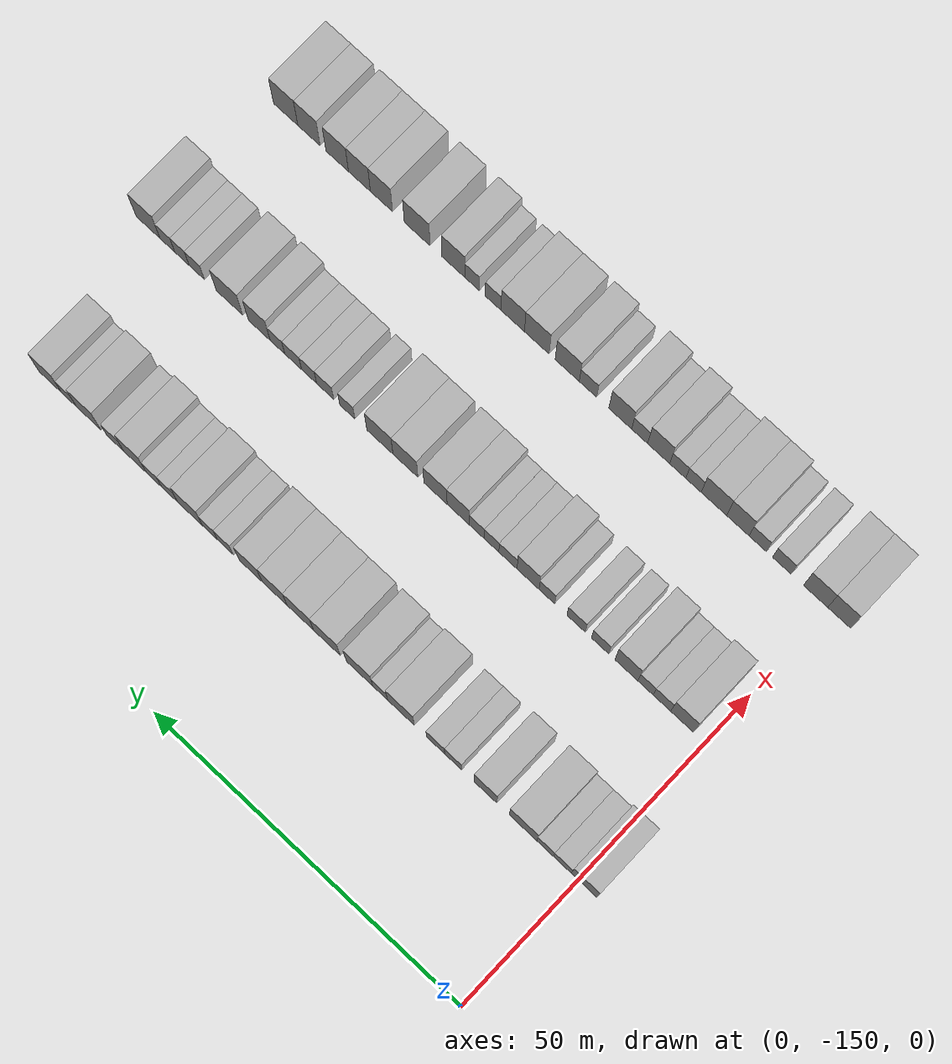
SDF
<sdf version="1.6">
 <world name="default">
  <model name="building_26">
   <static>1</static>
   <pose>25.0000 -150.8391 0 0.000000 0.000000 0.000000</pose>
   <link name="link">
    <pose>0 0 4.50 0 0 0</pose>
    <collision name="collision"><geometry><box><size>10.0000 4.0798 9.0000</size></box></geometry></collision>
    <visual name="visual">
     <cast_shadows>0</cast_shadows>
     <geometry><box><size>10.0000 4.0798 9.0000</size></box></geometry>
     <material>
      <script>
       <uri>model://HANNAS_wall/materials/scripts</uri>
       <uri>model://HANNAS_wall/materials/textures</uri>
       <name>vrc/HANNAS_wall</name>
      </script>
     </material>
    </visual>
   </link>
  </model>
  <model name="building_27">
   <static>1</static>
   <pose>25.0000 -147.3620 0 0.000000 0.000000 0.000000</pose>
   <link name="link">
    <pose>0 0 3.00 0 0 0</pose>
    <collision name="collision"><geometry><box><size>10.0000 2.8744 6.0000</size></box></geometry></collision>
    <visual name="visual">
     <cast_shadows>0</cast_shadows>
     <geometry><box><size>10.0000 2.8744 6.0000</size></box></geometry>
     <material>
      <script>
       <uri>model://HANNAS_wall/materials/scripts</uri>
       <uri>model://HANNAS_wall/materials/textures</uri>
       <name>vrc/HANNAS_wall</name>
      </script>
     </material>
    </visual>
   </link>
  </model>
  <model name="building_28">
   <static>1</static>
   <pose>25.0000 -144.6127 0 0.000000 0.000000 0.000000</pose>
   <link name="link">
    <pose>0 0 3.00 0 0 0</pose>
    <collision name="collision"><geometry><box><size>10.0000 2.6241 6.0000</size></box></geometry></collision>
    <visual name="visual">
     <cast_shadows>0</cast_shadows>
     <geometry><box><size>10.0000 2.6241 6.0000</size></box></geometry>
     <material>
      <script>
       <uri>model://HANNAS_wall/materials/scripts</uri>
       <uri>model://HANNAS_wall/materials/textures</uri>
       <name>vrc/HANNAS_wall</name>
      </script>
     </material>
    </visual>
   </link>
  </model>
  <model name="building_29">
   <static>1</static>
   <pose>25.0000 -141.0831 0 0.000000 0.000000 0.000000</pose>
   <link name="link">
    <pose>0 0 4.50 0 0 0</pose>
    <collision name="collision"><geometry><box><size>10.0000 4.4352 9.0000</size></box></geometry></collision>
    <visual name="visual">
     <cast_shadows>0</cast_shadows>
     <geometry><box><size>10.0000 4.4352 9.0000</size></box></geometry>
     <material>
      <script>
       <uri>model://HANNAS_wall/materials/scripts</uri>
       <uri>model://HANNAS_wall/materials/textures</uri>
       <name>vrc/HANNAS_wall</name>
      </script>
     </material>
    </visual>
   </link>
  </model>
  <model name="building_30">
   <static>1</static>
   <pose>25.0000 -135.0234 0 0.000000 0.000000 0.000000</pose>
   <link name="link">
    <pose>0 0 4.50 0 0 0</pose>
    <collision name="collision"><geometry><box><size>10.0000 3.6841 9.0000</size></box></geometry></collision>
    <visual name="visual">
     <cast_shadows>0</cast_shadows>
     <geometry><box><size>10.0000 3.6841 9.0000</size></box></geometry>
     <material>
      <script>
       <uri>model://HANNAS_wall/materials/scripts</uri>
       <uri>model://HANNAS_wall/materials/textures</uri>
       <name>vrc/HANNAS_wall</name>
      </script>
     </material>
    </visual>
   </link>
  </model>
  <model name="building_31">
   <static>1</static>
   <pose>25.0000 -129.8097 0 0.000000 0.000000 0.000000</pose>
   <link name="link">
    <pose>0 0 3.00 0 0 0</pose>
    <collision name="collision"><geometry><box><size>10.0000 2.7434 6.0000</size></box></geometry></collision>
    <visual name="visual">
     <cast_shadows>0</cast_shadows>
     <geometry><box><size>10.0000 2.7434 6.0000</size></box></geometry>
     <material>
      <script>
       <uri>model://HANNAS_wall/materials/scripts</uri>
       <uri>model://HANNAS_wall/materials/textures</uri>
       <name>vrc/HANNAS_wall</name>
      </script>
     </material>
    </visual>
   </link>
  </model>
  <model name="building_32">
   <static>1</static>
   <pose>25.0000 -126.9727 0 0.000000 0.000000 0.000000</pose>
   <link name="link">
    <pose>0 0 3.00 0 0 0</pose>
    <collision name="collision"><geometry><box><size>10.0000 2.9306 6.0000</size></box></geometry></collision>
    <visual name="visual">
     <cast_shadows>0</cast_shadows>
     <geometry><box><size>10.0000 2.9306 6.0000</size></box></geometry>
     <material>
      <script>
       <uri>model://HANNAS_wall/materials/scripts</uri>
       <uri>model://HANNAS_wall/materials/textures</uri>
       <name>vrc/HANNAS_wall</name>
      </script>
     </material>
    </visual>
   </link>
  </model>
  <model name="building_33">
   <static>1</static>
   <pose>25.0000 -121.3154 0 0.000000 0.000000 0.000000</pose>
   <link name="link">
    <pose>0 0 4.50 0 0 0</pose>
    <collision name="collision"><geometry><box><size>10.0000 4.3840 9.0000</size></box></geometry></collision>
    <visual name="visual">
     <cast_shadows>0</cast_shadows>
     <geometry><box><size>10.0000 4.3840 9.0000</size></box></geometry>
     <material>
      <script>
       <uri>model://HANNAS_wall/materials/scripts</uri>
       <uri>model://HANNAS_wall/materials/textures</uri>
       <name>vrc/HANNAS_wall</name>
      </script>
     </material>
    </visual>
   </link>
  </model>
  <model name="building_34">
   <static>1</static>
   <pose>25.0000 -117.9137 0 0.000000 0.000000 0.000000</pose>
   <link name="link">
    <pose>0 0 3.00 0 0 0</pose>
    <collision name="collision"><geometry><box><size>10.0000 2.4193 6.0000</size></box></geometry></collision>
    <visual name="visual">
     <cast_shadows>0</cast_shadows>
     <geometry><box><size>10.0000 2.4193 6.0000</size></box></geometry>
     <material>
      <script>
       <uri>model://HANNAS_wall/materials/scripts</uri>
       <uri>model://HANNAS_wall/materials/textures</uri>
       <name>vrc/HANNAS_wall</name>
      </script>
     </material>
    </visual>
   </link>
  </model>
  <model name="building_35">
   <static>1</static>
   <pose>25.0000 -114.5419 0 0.000000 0.000000 0.000000</pose>
   <link name="link">
    <pose>0 0 4.50 0 0 0</pose>
    <collision name="collision"><geometry><box><size>10.0000 4.3243 9.0000</size></box></geometry></collision>
    <visual name="visual">
     <cast_shadows>0</cast_shadows>
     <geometry><box><size>10.0000 4.3243 9.0000</size></box></geometry>
     <material>
      <script>
       <uri>model://HANNAS_wall/materials/scripts</uri>
       <uri>model://HANNAS_wall/materials/textures</uri>
       <name>vrc/HANNAS_wall</name>
      </script>
     </material>
    </visual>
   </link>
  </model>
  <model name="building_36">
   <static>1</static>
   <pose>25.0000 -109.1710 0 0.000000 0.000000 0.000000</pose>
   <link name="link">
    <pose>0 0 4.50 0 0 0</pose>
    <collision name="collision"><geometry><box><size>10.0000 4.4175 9.0000</size></box></geometry></collision>
    <visual name="visual">
     <cast_shadows>0</cast_shadows>
     <geometry><box><size>10.0000 4.4175 9.0000</size></box></geometry>
     <material>
      <script>
       <uri>model://HANNAS_wall/materials/scripts</uri>
       <uri>model://HANNAS_wall/materials/textures</uri>
       <name>vrc/HANNAS_wall</name>
      </script>
     </material>
    </visual>
   </link>
  </model>
  <model name="building_37">
   <static>1</static>
   <pose>25.0000 -104.7896 0 0.000000 0.000000 0.000000</pose>
   <link name="link">
    <pose>0 0 4.50 0 0 0</pose>
    <collision name="collision"><geometry><box><size>10.0000 4.3453 9.0000</size></box></geometry></collision>
    <visual name="visual">
     <cast_shadows>0</cast_shadows>
     <geometry><box><size>10.0000 4.3453 9.0000</size></box></geometry>
     <material>
      <script>
       <uri>model://HANNAS_wall/materials/scripts</uri>
       <uri>model://HANNAS_wall/materials/textures</uri>
       <name>vrc/HANNAS_wall</name>
      </script>
     </material>
    </visual>
   </link>
  </model>
  <model name="building_38">
   <static>1</static>
   <pose>25.0000 -100.5687 0 0.000000 0.000000 0.000000</pose>
   <link name="link">
    <pose>0 0 4.50 0 0 0</pose>
    <collision name="collision"><geometry><box><size>10.0000 4.0966 9.0000</size></box></geometry></collision>
    <visual name="visual">
     <cast_shadows>0</cast_shadows>
     <geometry><box><size>10.0000 4.0966 9.0000</size></box></geometry>
     <material>
      <script>
       <uri>model://HANNAS_wall/materials/scripts</uri>
       <uri>model://HANNAS_wall/materials/textures</uri>
       <name>vrc/HANNAS_wall</name>
      </script>
     </material>
    </visual>
   </link>
  </model>
  <model name="building_39">
   <static>1</static>
   <pose>25.0000 -96.6136 0 0.000000 0.000000 0.000000</pose>
   <link name="link">
    <pose>0 0 4.50 0 0 0</pose>
    <collision name="collision"><geometry><box><size>10.0000 3.8136 9.0000</size></box></geometry></collision>
    <visual name="visual">
     <cast_shadows>0</cast_shadows>
     <geometry><box><size>10.0000 3.8136 9.0000</size></box></geometry>
     <material>
      <script>
       <uri>model://HANNAS_wall/materials/scripts</uri>
       <uri>model://HANNAS_wall/materials/textures</uri>
       <name>vrc/HANNAS_wall</name>
      </script>
     </material>
    </visual>
   </link>
  </model>
  <model name="building_40">
   <static>1</static>
   <pose>25.0000 -92.3631 0 0.000000 0.000000 0.000000</pose>
   <link name="link">
    <pose>0 0 3.00 0 0 0</pose>
    <collision name="collision"><geometry><box><size>10.0000 2.6874 6.0000</size></box></geometry></collision>
    <visual name="visual">
     <cast_shadows>0</cast_shadows>
     <geometry><box><size>10.0000 2.6874 6.0000</size></box></geometry>
     <material>
      <script>
       <uri>model://HANNAS_wall/materials/scripts</uri>
       <uri>model://HANNAS_wall/materials/textures</uri>
       <name>vrc/HANNAS_wall</name>
      </script>
     </material>
    </visual>
   </link>
  </model>
  <model name="building_41">
   <static>1</static>
   <pose>25.0000 -89.7901 0 0.000000 0.000000 0.000000</pose>
   <link name="link">
    <pose>0 0 3.00 0 0 0</pose>
    <collision name="collision"><geometry><box><size>10.0000 2.4584 6.0000</size></box></geometry></collision>
    <visual name="visual">
     <cast_shadows>0</cast_shadows>
     <geometry><box><size>10.0000 2.4584 6.0000</size></box></geometry>
     <material>
      <script>
       <uri>model://HANNAS_wall/materials/scripts</uri>
       <uri>model://HANNAS_wall/materials/textures</uri>
       <name>vrc/HANNAS_wall</name>
      </script>
     </material>
    </visual>
   </link>
  </model>
  <model name="building_42">
   <static>1</static>
   <pose>25.0000 -86.4676 0 0.000000 0.000000 0.000000</pose>
   <link name="link">
    <pose>0 0 4.50 0 0 0</pose>
    <collision name="collision"><geometry><box><size>10.0000 4.1866 9.0000</size></box></geometry></collision>
    <visual name="visual">
     <cast_shadows>0</cast_shadows>
     <geometry><box><size>10.0000 4.1866 9.0000</size></box></geometry>
     <material>
      <script>
       <uri>model://HANNAS_wall/materials/scripts</uri>
       <uri>model://HANNAS_wall/materials/textures</uri>
       <name>vrc/HANNAS_wall</name>
      </script>
     </material>
    </visual>
   </link>
  </model>
  <model name="building_43">
   <static>1</static>
   <pose>25.0000 -83.0153 0 0.000000 0.000000 0.000000</pose>
   <link name="link">
    <pose>0 0 3.00 0 0 0</pose>
    <collision name="collision"><geometry><box><size>10.0000 2.7180 6.0000</size></box></geometry></collision>
    <visual name="visual">
     <cast_shadows>0</cast_shadows>
     <geometry><box><size>10.0000 2.7180 6.0000</size></box></geometry>
     <material>
      <script>
       <uri>model://HANNAS_wall/materials/scripts</uri>
       <uri>model://HANNAS_wall/materials/textures</uri>
       <name>vrc/HANNAS_wall</name>
      </script>
     </material>
    </visual>
   </link>
  </model>
  <model name="building_44">
   <static>1</static>
   <pose>25.0000 -80.3858 0 0.000000 0.000000 0.000000</pose>
   <link name="link">
    <pose>0 0 3.00 0 0 0</pose>
    <collision name="collision"><geometry><box><size>10.0000 2.5410 6.0000</size></box></geometry></collision>
    <visual name="visual">
     <cast_shadows>0</cast_shadows>
     <geometry><box><size>10.0000 2.5410 6.0000</size></box></geometry>
     <material>
      <script>
       <uri>model://HANNAS_wall/materials/scripts</uri>
       <uri>model://HANNAS_wall/materials/textures</uri>
       <name>vrc/HANNAS_wall</name>
      </script>
     </material>
    </visual>
   </link>
  </model>
  <model name="building_45">
   <static>1</static>
   <pose>25.0000 -77.1914 0 0.000000 0.000000 0.000000</pose>
   <link name="link">
    <pose>0 0 4.50 0 0 0</pose>
    <collision name="collision"><geometry><box><size>10.0000 3.8477 9.0000</size></box></geometry></collision>
    <visual name="visual">
     <cast_shadows>0</cast_shadows>
     <geometry><box><size>10.0000 3.8477 9.0000</size></box></geometry>
     <material>
      <script>
       <uri>model://HANNAS_wall/materials/scripts</uri>
       <uri>model://HANNAS_wall/materials/textures</uri>
       <name>vrc/HANNAS_wall</name>
      </script>
     </material>
    </visual>
   </link>
  </model>
  <model name="building_46">
   <static>1</static>
   <pose>25.0000 -73.8121 0 0.000000 0.000000 0.000000</pose>
   <link name="link">
    <pose>0 0 3.00 0 0 0</pose>
    <collision name="collision"><geometry><box><size>10.0000 2.9108 6.0000</size></box></geometry></collision>
    <visual name="visual">
     <cast_shadows>0</cast_shadows>
     <geometry><box><size>10.0000 2.9108 6.0000</size></box></geometry>
     <material>
      <script>
       <uri>model://HANNAS_wall/materials/scripts</uri>
       <uri>model://HANNAS_wall/materials/textures</uri>
       <name>vrc/HANNAS_wall</name>
      </script>
     </material>
    </visual>
   </link>
  </model>
  <model name="building_47">
   <static>1</static>
   <pose>25.0000 -69.3025 0 0.000000 0.000000 0.000000</pose>
   <link name="link">
    <pose>0 0 4.50 0 0 0</pose>
    <collision name="collision"><geometry><box><size>10.0000 4.1084 9.0000</size></box></geometry></collision>
    <visual name="visual">
     <cast_shadows>0</cast_shadows>
     <geometry><box><size>10.0000 4.1084 9.0000</size></box></geometry>
     <material>
      <script>
       <uri>model://HANNAS_wall/materials/scripts</uri>
       <uri>model://HANNAS_wall/materials/textures</uri>
       <name>vrc/HANNAS_wall</name>
      </script>
     </material>
    </visual>
   </link>
  </model>
  <model name="building_48">
   <static>1</static>
   <pose>25.0000 -65.9765 0 0.000000 0.000000 0.000000</pose>
   <link name="link">
    <pose>0 0 3.00 0 0 0</pose>
    <collision name="collision"><geometry><box><size>10.0000 2.5437 6.0000</size></box></geometry></collision>
    <visual name="visual">
     <cast_shadows>0</cast_shadows>
     <geometry><box><size>10.0000 2.5437 6.0000</size></box></geometry>
     <material>
      <script>
       <uri>model://HANNAS_wall/materials/scripts</uri>
       <uri>model://HANNAS_wall/materials/textures</uri>
       <name>vrc/HANNAS_wall</name>
      </script>
     </material>
    </visual>
   </link>
  </model>
  <model name="building_49">
   <static>1</static>
   <pose>25.0000 -62.7711 0 0.000000 0.000000 0.000000</pose>
   <link name="link">
    <pose>0 0 4.50 0 0 0</pose>
    <collision name="collision"><geometry><box><size>10.0000 3.8670 9.0000</size></box></geometry></collision>
    <visual name="visual">
     <cast_shadows>0</cast_shadows>
     <geometry><box><size>10.0000 3.8670 9.0000</size></box></geometry>
     <material>
      <script>
       <uri>model://HANNAS_wall/materials/scripts</uri>
       <uri>model://HANNAS_wall/materials/textures</uri>
       <name>vrc/HANNAS_wall</name>
      </script>
     </material>
    </visual>
   </link>
  </model>
  <model name="building_148">
   <static>1</static>
   <pose>47.0000 -146.2630 0 0.000000 0.000000 0.000000</pose>
   <link name="link">
    <pose>0 0 4.50 0 0 0</pose>
    <collision name="collision"><geometry><box><size>10.0000 3.6458 9.0000</size></box></geometry></collision>
    <visual name="visual">
     <cast_shadows>0</cast_shadows>
     <geometry><box><size>10.0000 3.6458 9.0000</size></box></geometry>
     <material>
      <script>
       <uri>model://HANNAS_wall/materials/scripts</uri>
       <uri>model://HANNAS_wall/materials/textures</uri>
       <name>vrc/HANNAS_wall</name>
      </script>
     </material>
    </visual>
   </link>
  </model>
  <model name="building_149">
   <static>1</static>
   <pose>47.0000 -143.0267 0 0.000000 0.000000 0.000000</pose>
   <link name="link">
    <pose>0 0 3.00 0 0 0</pose>
    <collision name="collision"><geometry><box><size>10.0000 2.8269 6.0000</size></box></geometry></collision>
    <visual name="visual">
     <cast_shadows>0</cast_shadows>
     <geometry><box><size>10.0000 2.8269 6.0000</size></box></geometry>
     <material>
      <script>
       <uri>model://HANNAS_wall/materials/scripts</uri>
       <uri>model://HANNAS_wall/materials/textures</uri>
       <name>vrc/HANNAS_wall</name>
      </script>
     </material>
    </visual>
   </link>
  </model>
  <model name="building_150">
   <static>1</static>
   <pose>47.0000 -140.3942 0 0.000000 0.000000 0.000000</pose>
   <link name="link">
    <pose>0 0 3.00 0 0 0</pose>
    <collision name="collision"><geometry><box><size>10.0000 2.4381 6.0000</size></box></geometry></collision>
    <visual name="visual">
     <cast_shadows>0</cast_shadows>
     <geometry><box><size>10.0000 2.4381 6.0000</size></box></geometry>
     <material>
      <script>
       <uri>model://HANNAS_wall/materials/scripts</uri>
       <uri>model://HANNAS_wall/materials/textures</uri>
       <name>vrc/HANNAS_wall</name>
      </script>
     </material>
    </visual>
   </link>
  </model>
  <model name="building_151">
   <static>1</static>
   <pose>47.0000 -137.3197 0 0.000000 0.000000 0.000000</pose>
   <link name="link">
    <pose>0 0 4.50 0 0 0</pose>
    <collision name="collision"><geometry><box><size>10.0000 3.7110 9.0000</size></box></geometry></collision>
    <visual name="visual">
     <cast_shadows>0</cast_shadows>
     <geometry><box><size>10.0000 3.7110 9.0000</size></box></geometry>
     <material>
      <script>
       <uri>model://HANNAS_wall/materials/scripts</uri>
       <uri>model://HANNAS_wall/materials/textures</uri>
       <name>vrc/HANNAS_wall</name>
      </script>
     </material>
    </visual>
   </link>
  </model>
  <model name="building_152">
   <static>1</static>
   <pose>47.0000 -133.0549 0 0.000000 0.000000 0.000000</pose>
   <link name="link">
    <pose>0 0 3.00 0 0 0</pose>
    <collision name="collision"><geometry><box><size>10.0000 2.8186 6.0000</size></box></geometry></collision>
    <visual name="visual">
     <cast_shadows>0</cast_shadows>
     <geometry><box><size>10.0000 2.8186 6.0000</size></box></geometry>
     <material>
      <script>
       <uri>model://HANNAS_wall/materials/scripts</uri>
       <uri>model://HANNAS_wall/materials/textures</uri>
       <name>vrc/HANNAS_wall</name>
      </script>
     </material>
    </visual>
   </link>
  </model>
  <model name="building_153">
   <static>1</static>
   <pose>47.0000 -129.1639 0 0.000000 0.000000 0.000000</pose>
   <link name="link">
    <pose>0 0 3.00 0 0 0</pose>
    <collision name="collision"><geometry><box><size>10.0000 2.9634 6.0000</size></box></geometry></collision>
    <visual name="visual">
     <cast_shadows>0</cast_shadows>
     <geometry><box><size>10.0000 2.9634 6.0000</size></box></geometry>
     <material>
      <script>
       <uri>model://HANNAS_wall/materials/scripts</uri>
       <uri>model://HANNAS_wall/materials/textures</uri>
       <name>vrc/HANNAS_wall</name>
      </script>
     </material>
    </visual>
   </link>
  </model>
  <model name="building_154">
   <static>1</static>
   <pose>47.0000 -124.4068 0 0.000000 0.000000 0.000000</pose>
   <link name="link">
    <pose>0 0 3.00 0 0 0</pose>
    <collision name="collision"><geometry><box><size>10.0000 2.5506 6.0000</size></box></geometry></collision>
    <visual name="visual">
     <cast_shadows>0</cast_shadows>
     <geometry><box><size>10.0000 2.5506 6.0000</size></box></geometry>
     <material>
      <script>
       <uri>model://HANNAS_wall/materials/scripts</uri>
       <uri>model://HANNAS_wall/materials/textures</uri>
       <name>vrc/HANNAS_wall</name>
      </script>
     </material>
    </visual>
   </link>
  </model>
  <model name="building_155">
   <static>1</static>
   <pose>47.0000 -121.3309 0 0.000000 0.000000 0.000000</pose>
   <link name="link">
    <pose>0 0 4.50 0 0 0</pose>
    <collision name="collision"><geometry><box><size>10.0000 3.6012 9.0000</size></box></geometry></collision>
    <visual name="visual">
     <cast_shadows>0</cast_shadows>
     <geometry><box><size>10.0000 3.6012 9.0000</size></box></geometry>
     <material>
      <script>
       <uri>model://HANNAS_wall/materials/scripts</uri>
       <uri>model://HANNAS_wall/materials/textures</uri>
       <name>vrc/HANNAS_wall</name>
      </script>
     </material>
    </visual>
   </link>
  </model>
  <model name="building_156">
   <static>1</static>
   <pose>47.0000 -118.0447 0 0.000000 0.000000 0.000000</pose>
   <link name="link">
    <pose>0 0 3.00 0 0 0</pose>
    <collision name="collision"><geometry><box><size>10.0000 2.9713 6.0000</size></box></geometry></collision>
    <visual name="visual">
     <cast_shadows>0</cast_shadows>
     <geometry><box><size>10.0000 2.9713 6.0000</size></box></geometry>
     <material>
      <script>
       <uri>model://HANNAS_wall/materials/scripts</uri>
       <uri>model://HANNAS_wall/materials/textures</uri>
       <name>vrc/HANNAS_wall</name>
      </script>
     </material>
    </visual>
   </link>
  </model>
  <model name="building_157">
   <static>1</static>
   <pose>47.0000 -115.3517 0 0.000000 0.000000 0.000000</pose>
   <link name="link">
    <pose>0 0 3.00 0 0 0</pose>
    <collision name="collision"><geometry><box><size>10.0000 2.4148 6.0000</size></box></geometry></collision>
    <visual name="visual">
     <cast_shadows>0</cast_shadows>
     <geometry><box><size>10.0000 2.4148 6.0000</size></box></geometry>
     <material>
      <script>
       <uri>model://HANNAS_wall/materials/scripts</uri>
       <uri>model://HANNAS_wall/materials/textures</uri>
       <name>vrc/HANNAS_wall</name>
      </script>
     </material>
    </visual>
   </link>
  </model>
  <model name="building_158">
   <static>1</static>
   <pose>47.0000 -112.9358 0 0.000000 0.000000 0.000000</pose>
   <link name="link">
    <pose>0 0 3.00 0 0 0</pose>
    <collision name="collision"><geometry><box><size>10.0000 2.4169 6.0000</size></box></geometry></collision>
    <visual name="visual">
     <cast_shadows>0</cast_shadows>
     <geometry><box><size>10.0000 2.4169 6.0000</size></box></geometry>
     <material>
      <script>
       <uri>model://HANNAS_wall/materials/scripts</uri>
       <uri>model://HANNAS_wall/materials/textures</uri>
       <name>vrc/HANNAS_wall</name>
      </script>
     </material>
    </visual>
   </link>
  </model>
  <model name="building_159">
   <static>1</static>
   <pose>47.0000 -109.8880 0 0.000000 0.000000 0.000000</pose>
   <link name="link">
    <pose>0 0 4.50 0 0 0</pose>
    <collision name="collision"><geometry><box><size>10.0000 3.6787 9.0000</size></box></geometry></collision>
    <visual name="visual">
     <cast_shadows>0</cast_shadows>
     <geometry><box><size>10.0000 3.6787 9.0000</size></box></geometry>
     <material>
      <script>
       <uri>model://HANNAS_wall/materials/scripts</uri>
       <uri>model://HANNAS_wall/materials/textures</uri>
       <name>vrc/HANNAS_wall</name>
      </script>
     </material>
    </visual>
   </link>
  </model>
  <model name="building_160">
   <static>1</static>
   <pose>47.0000 -106.1324 0 0.000000 0.000000 0.000000</pose>
   <link name="link">
    <pose>0 0 4.50 0 0 0</pose>
    <collision name="collision"><geometry><box><size>10.0000 3.8325 9.0000</size></box></geometry></collision>
    <visual name="visual">
     <cast_shadows>0</cast_shadows>
     <geometry><box><size>10.0000 3.8325 9.0000</size></box></geometry>
     <material>
      <script>
       <uri>model://HANNAS_wall/materials/scripts</uri>
       <uri>model://HANNAS_wall/materials/textures</uri>
       <name>vrc/HANNAS_wall</name>
      </script>
     </material>
    </visual>
   </link>
  </model>
  <model name="building_161">
   <static>1</static>
   <pose>47.0000 -101.1475 0 0.000000 0.000000 0.000000</pose>
   <link name="link">
    <pose>0 0 4.50 0 0 0</pose>
    <collision name="collision"><geometry><box><size>10.0000 4.1373 9.0000</size></box></geometry></collision>
    <visual name="visual">
     <cast_shadows>0</cast_shadows>
     <geometry><box><size>10.0000 4.1373 9.0000</size></box></geometry>
     <material>
      <script>
       <uri>model://HANNAS_wall/materials/scripts</uri>
       <uri>model://HANNAS_wall/materials/textures</uri>
       <name>vrc/HANNAS_wall</name>
      </script>
     </material>
    </visual>
   </link>
  </model>
  <model name="building_162">
   <static>1</static>
   <pose>47.0000 -96.9078 0 0.000000 0.000000 0.000000</pose>
   <link name="link">
    <pose>0 0 4.50 0 0 0</pose>
    <collision name="collision"><geometry><box><size>10.0000 4.3419 9.0000</size></box></geometry></collision>
    <visual name="visual">
     <cast_shadows>0</cast_shadows>
     <geometry><box><size>10.0000 4.3419 9.0000</size></box></geometry>
     <material>
      <script>
       <uri>model://HANNAS_wall/materials/scripts</uri>
       <uri>model://HANNAS_wall/materials/textures</uri>
       <name>vrc/HANNAS_wall</name>
      </script>
     </material>
    </visual>
   </link>
  </model>
  <model name="building_163">
   <static>1</static>
   <pose>47.0000 -91.4735 0 0.000000 0.000000 0.000000</pose>
   <link name="link">
    <pose>0 0 3.00 0 0 0</pose>
    <collision name="collision"><geometry><box><size>10.0000 2.5267 6.0000</size></box></geometry></collision>
    <visual name="visual">
     <cast_shadows>0</cast_shadows>
     <geometry><box><size>10.0000 2.5267 6.0000</size></box></geometry>
     <material>
      <script>
       <uri>model://HANNAS_wall/materials/scripts</uri>
       <uri>model://HANNAS_wall/materials/textures</uri>
       <name>vrc/HANNAS_wall</name>
      </script>
     </material>
    </visual>
   </link>
  </model>
  <model name="building_164">
   <static>1</static>
   <pose>47.0000 -87.7685 0 0.000000 0.000000 0.000000</pose>
   <link name="link">
    <pose>0 0 3.00 0 0 0</pose>
    <collision name="collision"><geometry><box><size>10.0000 2.8833 6.0000</size></box></geometry></collision>
    <visual name="visual">
     <cast_shadows>0</cast_shadows>
     <geometry><box><size>10.0000 2.8833 6.0000</size></box></geometry>
     <material>
      <script>
       <uri>model://HANNAS_wall/materials/scripts</uri>
       <uri>model://HANNAS_wall/materials/textures</uri>
       <name>vrc/HANNAS_wall</name>
      </script>
     </material>
    </visual>
   </link>
  </model>
  <model name="building_165">
   <static>1</static>
   <pose>47.0000 -85.0666 0 0.000000 0.000000 0.000000</pose>
   <link name="link">
    <pose>0 0 3.00 0 0 0</pose>
    <collision name="collision"><geometry><box><size>10.0000 2.5205 6.0000</size></box></geometry></collision>
    <visual name="visual">
     <cast_shadows>0</cast_shadows>
     <geometry><box><size>10.0000 2.5205 6.0000</size></box></geometry>
     <material>
      <script>
       <uri>model://HANNAS_wall/materials/scripts</uri>
       <uri>model://HANNAS_wall/materials/textures</uri>
       <name>vrc/HANNAS_wall</name>
      </script>
     </material>
    </visual>
   </link>
  </model>
  <model name="building_166">
   <static>1</static>
   <pose>47.0000 -82.3837 0 0.000000 0.000000 0.000000</pose>
   <link name="link">
    <pose>0 0 3.00 0 0 0</pose>
    <collision name="collision"><geometry><box><size>10.0000 2.8452 6.0000</size></box></geometry></collision>
    <visual name="visual">
     <cast_shadows>0</cast_shadows>
     <geometry><box><size>10.0000 2.8452 6.0000</size></box></geometry>
     <material>
      <script>
       <uri>model://HANNAS_wall/materials/scripts</uri>
       <uri>model://HANNAS_wall/materials/textures</uri>
       <name>vrc/HANNAS_wall</name>
      </script>
     </material>
    </visual>
   </link>
  </model>
  <model name="building_167">
   <static>1</static>
   <pose>47.0000 -79.7245 0 0.000000 0.000000 0.000000</pose>
   <link name="link">
    <pose>0 0 3.00 0 0 0</pose>
    <collision name="collision"><geometry><box><size>10.0000 2.4732 6.0000</size></box></geometry></collision>
    <visual name="visual">
     <cast_shadows>0</cast_shadows>
     <geometry><box><size>10.0000 2.4732 6.0000</size></box></geometry>
     <material>
      <script>
       <uri>model://HANNAS_wall/materials/scripts</uri>
       <uri>model://HANNAS_wall/materials/textures</uri>
       <name>vrc/HANNAS_wall</name>
      </script>
     </material>
    </visual>
   </link>
  </model>
  <model name="building_168">
   <static>1</static>
   <pose>47.0000 -76.6484 0 0.000000 0.000000 0.000000</pose>
   <link name="link">
    <pose>0 0 4.50 0 0 0</pose>
    <collision name="collision"><geometry><box><size>10.0000 3.6791 9.0000</size></box></geometry></collision>
    <visual name="visual">
     <cast_shadows>0</cast_shadows>
     <geometry><box><size>10.0000 3.6791 9.0000</size></box></geometry>
     <material>
      <script>
       <uri>model://HANNAS_wall/materials/scripts</uri>
       <uri>model://HANNAS_wall/materials/textures</uri>
       <name>vrc/HANNAS_wall</name>
      </script>
     </material>
    </visual>
   </link>
  </model>
  <model name="building_169">
   <static>1</static>
   <pose>47.0000 -71.5657 0 0.000000 0.000000 0.000000</pose>
   <link name="link">
    <pose>0 0 4.50 0 0 0</pose>
    <collision name="collision"><geometry><box><size>10.0000 4.4864 9.0000</size></box></geometry></collision>
    <visual name="visual">
     <cast_shadows>0</cast_shadows>
     <geometry><box><size>10.0000 4.4864 9.0000</size></box></geometry>
     <material>
      <script>
       <uri>model://HANNAS_wall/materials/scripts</uri>
       <uri>model://HANNAS_wall/materials/textures</uri>
       <name>vrc/HANNAS_wall</name>
      </script>
     </material>
    </visual>
   </link>
  </model>
  <model name="building_170">
   <static>1</static>
   <pose>47.0000 -66.0138 0 0.000000 0.000000 0.000000</pose>
   <link name="link">
    <pose>0 0 3.00 0 0 0</pose>
    <collision name="collision"><geometry><box><size>10.0000 2.6173 6.0000</size></box></geometry></collision>
    <visual name="visual">
     <cast_shadows>0</cast_shadows>
     <geometry><box><size>10.0000 2.6173 6.0000</size></box></geometry>
     <material>
      <script>
       <uri>model://HANNAS_wall/materials/scripts</uri>
       <uri>model://HANNAS_wall/materials/textures</uri>
       <name>vrc/HANNAS_wall</name>
      </script>
     </material>
    </visual>
   </link>
  </model>
  <model name="building_171">
   <static>1</static>
   <pose>47.0000 -63.4793 0 0.000000 0.000000 0.000000</pose>
   <link name="link">
    <pose>0 0 3.00 0 0 0</pose>
    <collision name="collision"><geometry><box><size>10.0000 2.4517 6.0000</size></box></geometry></collision>
    <visual name="visual">
     <cast_shadows>0</cast_shadows>
     <geometry><box><size>10.0000 2.4517 6.0000</size></box></geometry>
     <material>
      <script>
       <uri>model://HANNAS_wall/materials/scripts</uri>
       <uri>model://HANNAS_wall/materials/textures</uri>
       <name>vrc/HANNAS_wall</name>
      </script>
     </material>
    </visual>
   </link>
  </model>
  <model name="building_172">
   <static>1</static>
   <pose>47.0000 -60.9895 0 0.000000 0.000000 0.000000</pose>
   <link name="link">
    <pose>0 0 3.00 0 0 0</pose>
    <collision name="collision"><geometry><box><size>10.0000 2.5280 6.0000</size></box></geometry></collision>
    <visual name="visual">
     <cast_shadows>0</cast_shadows>
     <geometry><box><size>10.0000 2.5280 6.0000</size></box></geometry>
     <material>
      <script>
       <uri>model://HANNAS_wall/materials/scripts</uri>
       <uri>model://HANNAS_wall/materials/textures</uri>
       <name>vrc/HANNAS_wall</name>
      </script>
     </material>
    </visual>
   </link>
  </model>
  <model name="building_173">
   <static>1</static>
   <pose>47.0000 -57.6738 0 0.000000 0.000000 0.000000</pose>
   <link name="link">
    <pose>0 0 4.50 0 0 0</pose>
    <collision name="collision"><geometry><box><size>10.0000 4.1034 9.0000</size></box></geometry></collision>
    <visual name="visual">
     <cast_shadows>0</cast_shadows>
     <geometry><box><size>10.0000 4.1034 9.0000</size></box></geometry>
     <material>
      <script>
       <uri>model://HANNAS_wall/materials/scripts</uri>
       <uri>model://HANNAS_wall/materials/textures</uri>
       <name>vrc/HANNAS_wall</name>
      </script>
     </material>
    </visual>
   </link>
  </model>
  <model name="building_264">
   <static>1</static>
   <pose>69.0000 -151.5275 0 0.000000 0.000000 0.000000</pose>
   <link name="link">
    <pose>0 0 4.50 0 0 0</pose>
    <collision name="collision"><geometry><box><size>10.0000 3.6701 9.0000</size></box></geometry></collision>
    <visual name="visual">
     <cast_shadows>0</cast_shadows>
     <geometry><box><size>10.0000 3.6701 9.0000</size></box></geometry>
     <material>
      <script>
       <uri>model://HANNAS_wall/materials/scripts</uri>
       <uri>model://HANNAS_wall/materials/textures</uri>
       <name>vrc/HANNAS_wall</name>
      </script>
     </material>
    </visual>
   </link>
  </model>
  <model name="building_265">
   <static>1</static>
   <pose>69.0000 -147.7534 0 0.000000 0.000000 0.000000</pose>
   <link name="link">
    <pose>0 0 4.50 0 0 0</pose>
    <collision name="collision"><geometry><box><size>10.0000 3.8780 9.0000</size></box></geometry></collision>
    <visual name="visual">
     <cast_shadows>0</cast_shadows>
     <geometry><box><size>10.0000 3.8780 9.0000</size></box></geometry>
     <material>
      <script>
       <uri>model://HANNAS_wall/materials/scripts</uri>
       <uri>model://HANNAS_wall/materials/textures</uri>
       <name>vrc/HANNAS_wall</name>
      </script>
     </material>
    </visual>
   </link>
  </model>
  <model name="building_266">
   <static>1</static>
   <pose>69.0000 -142.3229 0 0.000000 0.000000 0.000000</pose>
   <link name="link">
    <pose>0 0 3.00 0 0 0</pose>
    <collision name="collision"><geometry><box><size>10.0000 2.9831 6.0000</size></box></geometry></collision>
    <visual name="visual">
     <cast_shadows>0</cast_shadows>
     <geometry><box><size>10.0000 2.9831 6.0000</size></box></geometry>
     <material>
      <script>
       <uri>model://HANNAS_wall/materials/scripts</uri>
       <uri>model://HANNAS_wall/materials/textures</uri>
       <name>vrc/HANNAS_wall</name>
      </script>
     </material>
    </visual>
   </link>
  </model>
  <model name="building_267">
   <static>1</static>
   <pose>69.0000 -138.4316 0 0.000000 0.000000 0.000000</pose>
   <link name="link">
    <pose>0 0 3.00 0 0 0</pose>
    <collision name="collision"><geometry><box><size>10.0000 2.7995 6.0000</size></box></geometry></collision>
    <visual name="visual">
     <cast_shadows>0</cast_shadows>
     <geometry><box><size>10.0000 2.7995 6.0000</size></box></geometry>
     <material>
      <script>
       <uri>model://HANNAS_wall/materials/scripts</uri>
       <uri>model://HANNAS_wall/materials/textures</uri>
       <name>vrc/HANNAS_wall</name>
      </script>
     </material>
    </visual>
   </link>
  </model>
  <model name="building_268">
   <static>1</static>
   <pose>69.0000 -135.2193 0 0.000000 0.000000 0.000000</pose>
   <link name="link">
    <pose>0 0 4.50 0 0 0</pose>
    <collision name="collision"><geometry><box><size>10.0000 3.6250 9.0000</size></box></geometry></collision>
    <visual name="visual">
     <cast_shadows>0</cast_shadows>
     <geometry><box><size>10.0000 3.6250 9.0000</size></box></geometry>
     <material>
      <script>
       <uri>model://HANNAS_wall/materials/scripts</uri>
       <uri>model://HANNAS_wall/materials/textures</uri>
       <name>vrc/HANNAS_wall</name>
      </script>
     </material>
    </visual>
   </link>
  </model>
  <model name="building_269">
   <static>1</static>
   <pose>69.0000 -131.3462 0 0.000000 0.000000 0.000000</pose>
   <link name="link">
    <pose>0 0 4.50 0 0 0</pose>
    <collision name="collision"><geometry><box><size>10.0000 4.1213 9.0000</size></box></geometry></collision>
    <visual name="visual">
     <cast_shadows>0</cast_shadows>
     <geometry><box><size>10.0000 4.1213 9.0000</size></box></geometry>
     <material>
      <script>
       <uri>model://HANNAS_wall/materials/scripts</uri>
       <uri>model://HANNAS_wall/materials/textures</uri>
       <name>vrc/HANNAS_wall</name>
      </script>
     </material>
    </visual>
   </link>
  </model>
  <model name="building_270">
   <static>1</static>
   <pose>69.0000 -128.0275 0 0.000000 0.000000 0.000000</pose>
   <link name="link">
    <pose>0 0 3.00 0 0 0</pose>
    <collision name="collision"><geometry><box><size>10.0000 2.5160 6.0000</size></box></geometry></collision>
    <visual name="visual">
     <cast_shadows>0</cast_shadows>
     <geometry><box><size>10.0000 2.5160 6.0000</size></box></geometry>
     <material>
      <script>
       <uri>model://HANNAS_wall/materials/scripts</uri>
       <uri>model://HANNAS_wall/materials/textures</uri>
       <name>vrc/HANNAS_wall</name>
      </script>
     </material>
    </visual>
   </link>
  </model>
  <model name="building_271">
   <static>1</static>
   <pose>69.0000 -125.4592 0 0.000000 0.000000 0.000000</pose>
   <link name="link">
    <pose>0 0 3.00 0 0 0</pose>
    <collision name="collision"><geometry><box><size>10.0000 2.6208 6.0000</size></box></geometry></collision>
    <visual name="visual">
     <cast_shadows>0</cast_shadows>
     <geometry><box><size>10.0000 2.6208 6.0000</size></box></geometry>
     <material>
      <script>
       <uri>model://HANNAS_wall/materials/scripts</uri>
       <uri>model://HANNAS_wall/materials/textures</uri>
       <name>vrc/HANNAS_wall</name>
      </script>
     </material>
    </visual>
   </link>
  </model>
  <model name="building_272">
   <static>1</static>
   <pose>69.0000 -122.3438 0 0.000000 0.000000 0.000000</pose>
   <link name="link">
    <pose>0 0 4.50 0 0 0</pose>
    <collision name="collision"><geometry><box><size>10.0000 3.6099 9.0000</size></box></geometry></collision>
    <visual name="visual">
     <cast_shadows>0</cast_shadows>
     <geometry><box><size>10.0000 3.6099 9.0000</size></box></geometry>
     <material>
      <script>
       <uri>model://HANNAS_wall/materials/scripts</uri>
       <uri>model://HANNAS_wall/materials/textures</uri>
       <name>vrc/HANNAS_wall</name>
      </script>
     </material>
    </visual>
   </link>
  </model>
  <model name="building_273">
   <static>1</static>
   <pose>69.0000 -119.2283 0 0.000000 0.000000 0.000000</pose>
   <link name="link">
    <pose>0 0 3.00 0 0 0</pose>
    <collision name="collision"><geometry><box><size>10.0000 2.6212 6.0000</size></box></geometry></collision>
    <visual name="visual">
     <cast_shadows>0</cast_shadows>
     <geometry><box><size>10.0000 2.6212 6.0000</size></box></geometry>
     <material>
      <script>
       <uri>model://HANNAS_wall/materials/scripts</uri>
       <uri>model://HANNAS_wall/materials/textures</uri>
       <name>vrc/HANNAS_wall</name>
      </script>
     </material>
    </visual>
   </link>
  </model>
  <model name="building_274">
   <static>1</static>
   <pose>69.0000 -116.0396 0 0.000000 0.000000 0.000000</pose>
   <link name="link">
    <pose>0 0 4.50 0 0 0</pose>
    <collision name="collision"><geometry><box><size>10.0000 3.7561 9.0000</size></box></geometry></collision>
    <visual name="visual">
     <cast_shadows>0</cast_shadows>
     <geometry><box><size>10.0000 3.7561 9.0000</size></box></geometry>
     <material>
      <script>
       <uri>model://HANNAS_wall/materials/scripts</uri>
       <uri>model://HANNAS_wall/materials/textures</uri>
       <name>vrc/HANNAS_wall</name>
      </script>
     </material>
    </visual>
   </link>
  </model>
  <model name="building_275">
   <static>1</static>
   <pose>69.0000 -110.7269 0 0.000000 0.000000 0.000000</pose>
   <link name="link">
    <pose>0 0 3.00 0 0 0</pose>
    <collision name="collision"><geometry><box><size>10.0000 2.8694 6.0000</size></box></geometry></collision>
    <visual name="visual">
     <cast_shadows>0</cast_shadows>
     <geometry><box><size>10.0000 2.8694 6.0000</size></box></geometry>
     <material>
      <script>
       <uri>model://HANNAS_wall/materials/scripts</uri>
       <uri>model://HANNAS_wall/materials/textures</uri>
       <name>vrc/HANNAS_wall</name>
      </script>
     </material>
    </visual>
   </link>
  </model>
  <model name="building_276">
   <static>1</static>
   <pose>69.0000 -107.2934 0 0.000000 0.000000 0.000000</pose>
   <link name="link">
    <pose>0 0 4.50 0 0 0</pose>
    <collision name="collision"><geometry><box><size>10.0000 3.9976 9.0000</size></box></geometry></collision>
    <visual name="visual">
     <cast_shadows>0</cast_shadows>
     <geometry><box><size>10.0000 3.9976 9.0000</size></box></geometry>
     <material>
      <script>
       <uri>model://HANNAS_wall/materials/scripts</uri>
       <uri>model://HANNAS_wall/materials/textures</uri>
       <name>vrc/HANNAS_wall</name>
      </script>
     </material>
    </visual>
   </link>
  </model>
  <model name="building_277">
   <static>1</static>
   <pose>69.0000 -102.2519 0 0.000000 0.000000 0.000000</pose>
   <link name="link">
    <pose>0 0 4.50 0 0 0</pose>
    <collision name="collision"><geometry><box><size>10.0000 4.0854 9.0000</size></box></geometry></collision>
    <visual name="visual">
     <cast_shadows>0</cast_shadows>
     <geometry><box><size>10.0000 4.0854 9.0000</size></box></geometry>
     <material>
      <script>
       <uri>model://HANNAS_wall/materials/scripts</uri>
       <uri>model://HANNAS_wall/materials/textures</uri>
       <name>vrc/HANNAS_wall</name>
      </script>
     </material>
    </visual>
   </link>
  </model>
  <model name="building_278">
   <static>1</static>
   <pose>69.0000 -98.2462 0 0.000000 0.000000 0.000000</pose>
   <link name="link">
    <pose>0 0 4.50 0 0 0</pose>
    <collision name="collision"><geometry><box><size>10.0000 3.9260 9.0000</size></box></geometry></collision>
    <visual name="visual">
     <cast_shadows>0</cast_shadows>
     <geometry><box><size>10.0000 3.9260 9.0000</size></box></geometry>
     <material>
      <script>
       <uri>model://HANNAS_wall/materials/scripts</uri>
       <uri>model://HANNAS_wall/materials/textures</uri>
       <name>vrc/HANNAS_wall</name>
      </script>
     </material>
    </visual>
   </link>
  </model>
  <model name="building_279">
   <static>1</static>
   <pose>69.0000 -94.9811 0 0.000000 0.000000 0.000000</pose>
   <link name="link">
    <pose>0 0 3.00 0 0 0</pose>
    <collision name="collision"><geometry><box><size>10.0000 2.6040 6.0000</size></box></geometry></collision>
    <visual name="visual">
     <cast_shadows>0</cast_shadows>
     <geometry><box><size>10.0000 2.6040 6.0000</size></box></geometry>
     <material>
      <script>
       <uri>model://HANNAS_wall/materials/scripts</uri>
       <uri>model://HANNAS_wall/materials/textures</uri>
       <name>vrc/HANNAS_wall</name>
      </script>
     </material>
    </visual>
   </link>
  </model>
  <model name="building_280">
   <static>1</static>
   <pose>69.0000 -91.4615 0 0.000000 0.000000 0.000000</pose>
   <link name="link">
    <pose>0 0 3.00 0 0 0</pose>
    <collision name="collision"><geometry><box><size>10.0000 2.4353 6.0000</size></box></geometry></collision>
    <visual name="visual">
     <cast_shadows>0</cast_shadows>
     <geometry><box><size>10.0000 2.4353 6.0000</size></box></geometry>
     <material>
      <script>
       <uri>model://HANNAS_wall/materials/scripts</uri>
       <uri>model://HANNAS_wall/materials/textures</uri>
       <name>vrc/HANNAS_wall</name>
      </script>
     </material>
    </visual>
   </link>
  </model>
  <model name="building_281">
   <static>1</static>
   <pose>69.0000 -88.3214 0 0.000000 0.000000 0.000000</pose>
   <link name="link">
    <pose>0 0 4.50 0 0 0</pose>
    <collision name="collision"><geometry><box><size>10.0000 3.8448 9.0000</size></box></geometry></collision>
    <visual name="visual">
     <cast_shadows>0</cast_shadows>
     <geometry><box><size>10.0000 3.8448 9.0000</size></box></geometry>
     <material>
      <script>
       <uri>model://HANNAS_wall/materials/scripts</uri>
       <uri>model://HANNAS_wall/materials/textures</uri>
       <name>vrc/HANNAS_wall</name>
      </script>
     </material>
    </visual>
   </link>
  </model>
  <model name="building_282">
   <static>1</static>
   <pose>69.0000 -82.2257 0 0.000000 0.000000 0.000000</pose>
   <link name="link">
    <pose>0 0 4.50 0 0 0</pose>
    <collision name="collision"><geometry><box><size>10.0000 4.3467 9.0000</size></box></geometry></collision>
    <visual name="visual">
     <cast_shadows>0</cast_shadows>
     <geometry><box><size>10.0000 4.3467 9.0000</size></box></geometry>
     <material>
      <script>
       <uri>model://HANNAS_wall/materials/scripts</uri>
       <uri>model://HANNAS_wall/materials/textures</uri>
       <name>vrc/HANNAS_wall</name>
      </script>
     </material>
    </visual>
   </link>
  </model>
  <model name="building_283">
   <static>1</static>
   <pose>69.0000 -76.1840 0 0.000000 0.000000 0.000000</pose>
   <link name="link">
    <pose>0 0 4.50 0 0 0</pose>
    <collision name="collision"><geometry><box><size>10.0000 3.7367 9.0000</size></box></geometry></collision>
    <visual name="visual">
     <cast_shadows>0</cast_shadows>
     <geometry><box><size>10.0000 3.7367 9.0000</size></box></geometry>
     <material>
      <script>
       <uri>model://HANNAS_wall/materials/scripts</uri>
       <uri>model://HANNAS_wall/materials/textures</uri>
       <name>vrc/HANNAS_wall</name>
      </script>
     </material>
    </visual>
   </link>
  </model>
  <model name="building_284">
   <static>1</static>
   <pose>69.0000 -72.4499 0 0.000000 0.000000 0.000000</pose>
   <link name="link">
    <pose>0 0 4.50 0 0 0</pose>
    <collision name="collision"><geometry><box><size>10.0000 3.7314 9.0000</size></box></geometry></collision>
    <visual name="visual">
     <cast_shadows>0</cast_shadows>
     <geometry><box><size>10.0000 3.7314 9.0000</size></box></geometry>
     <material>
      <script>
       <uri>model://HANNAS_wall/materials/scripts</uri>
       <uri>model://HANNAS_wall/materials/textures</uri>
       <name>vrc/HANNAS_wall</name>
      </script>
     </material>
    </visual>
   </link>
  </model>
  <model name="building_285">
   <static>1</static>
   <pose>69.0000 -68.6584 0 0.000000 0.000000 0.000000</pose>
   <link name="link">
    <pose>0 0 4.50 0 0 0</pose>
    <collision name="collision"><geometry><box><size>10.0000 3.8518 9.0000</size></box></geometry></collision>
    <visual name="visual">
     <cast_shadows>0</cast_shadows>
     <geometry><box><size>10.0000 3.8518 9.0000</size></box></geometry>
     <material>
      <script>
       <uri>model://HANNAS_wall/materials/scripts</uri>
       <uri>model://HANNAS_wall/materials/textures</uri>
       <name>vrc/HANNAS_wall</name>
      </script>
     </material>
    </visual>
   </link>
  </model>
  <model name="building_286">
   <static>1</static>
   <pose>69.0000 -63.8316 0 0.000000 0.000000 0.000000</pose>
   <link name="link">
    <pose>0 0 4.50 0 0 0</pose>
    <collision name="collision"><geometry><box><size>10.0000 3.8018 9.0000</size></box></geometry></collision>
    <visual name="visual">
     <cast_shadows>0</cast_shadows>
     <geometry><box><size>10.0000 3.8018 9.0000</size></box></geometry>
     <material>
      <script>
       <uri>model://HANNAS_wall/materials/scripts</uri>
       <uri>model://HANNAS_wall/materials/textures</uri>
       <name>vrc/HANNAS_wall</name>
      </script>
     </material>
    </visual>
   </link>
  </model>
  <model name="building_287">
   <static>1</static>
   <pose>69.0000 -59.8453 0 0.000000 0.000000 0.000000</pose>
   <link name="link">
    <pose>0 0 4.50 0 0 0</pose>
    <collision name="collision"><geometry><box><size>10.0000 4.1708 9.0000</size></box></geometry></collision>
    <visual name="visual">
     <cast_shadows>0</cast_shadows>
     <geometry><box><size>10.0000 4.1708 9.0000</size></box></geometry>
     <material>
      <script>
       <uri>model://HANNAS_wall/materials/scripts</uri>
       <uri>model://HANNAS_wall/materials/textures</uri>
       <name>vrc/HANNAS_wall</name>
      </script>
     </material>
    </visual>
   </link>
  </model>
 </world>
</sdf>
